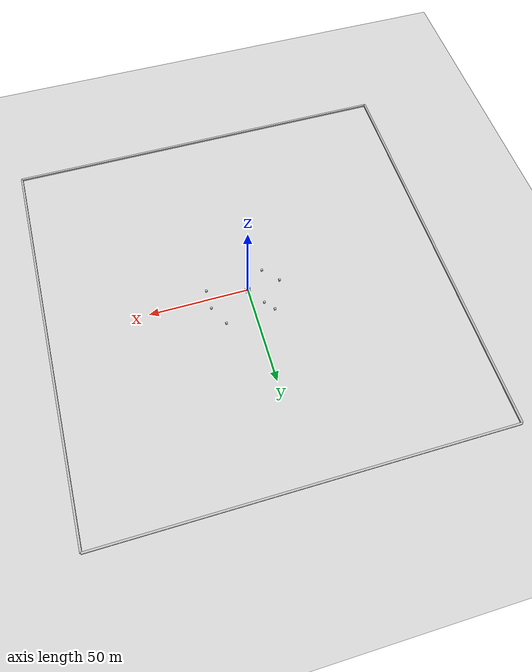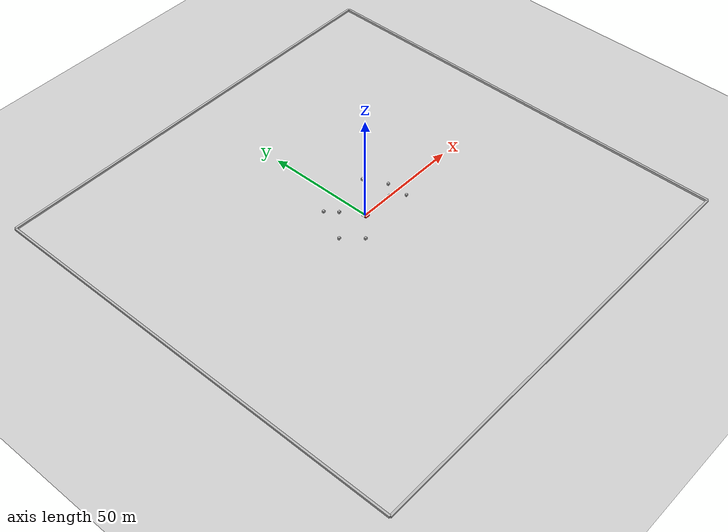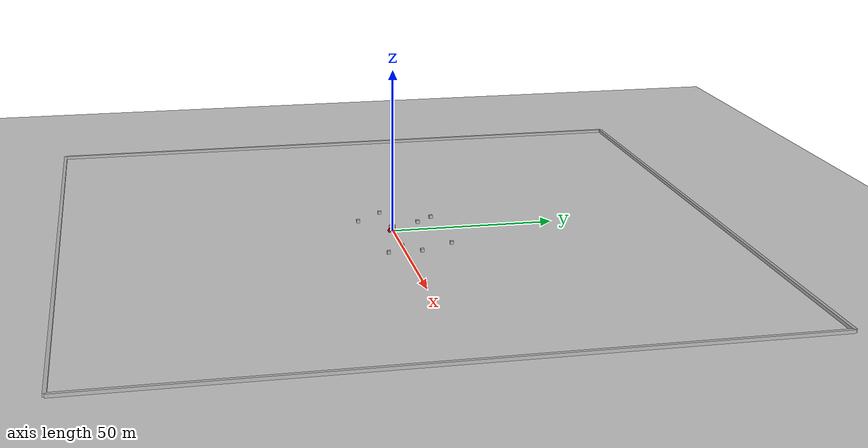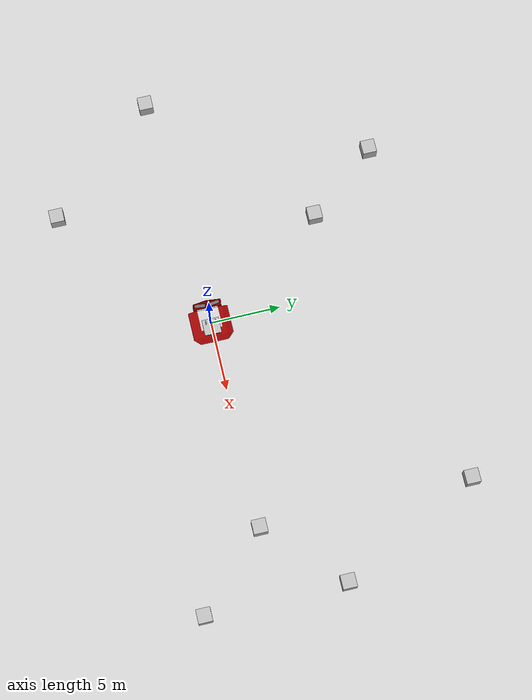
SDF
<sdf version="1.4">
    <world name="default">

      <physics type="ode">
        <real_time_update_rate>1000.0</real_time_update_rate>
        <ode>
          <solver>
            <iters>1000</iters>
          </solver>
        </ode>
      </physics>

      <include>
        <uri>model://sun</uri>
      </include>

      <include>
        <uri>model://ground_plane</uri>
      </include>

      <include>
        <uri>model://models</uri>
        <name>kratos</name>
        <pose>0 0 0.29 0 0 0</pose>
      </include>

      <model name='kratos_plataform'>
        <static>1</static>
        <pose>0 0 0 0 0 0</pose>
        <link name='link'>
          <collision name='collision'>
            <geometry>
              <mesh>
                <scale>100 100 100</scale>
                <uri>model://models/kratos_plataform4.dae</uri>
              </mesh>
            </geometry>
            <surface>
              <friction>
                <ode>
                  <mu>100000</mu>
                  <mu2>100000</mu2>
                </ode>
              </friction>
            </surface>
          </collision>
          <visual name='visual'>
            <cast_shadows>0</cast_shadows>
            <geometry>
              <mesh>
                <scale>100 100 100</scale>
                <uri>model://models/kratos_plataform4.dae</uri>
              </mesh>
            </geometry>

          </visual>
          <velocity_decay>
            <linear>0</linear>
            <angular>0</angular>
          </velocity_decay>
          <self_collide>0</self_collide>
          <kinematic>0</kinematic>
          <gravity>1</gravity>
        </link>
      </model>

      <model name='wall_west'>
        <pose>0 -100 0.5 0 0 0</pose>
        <static>1</static>
        <link name='link'>
          <collision name='collision'>
            <geometry>
              <box>
                <size>200 1 1</size>
              </box>
            </geometry>
          </collision>
          <visual name='visual'>
            <geometry>
              <box>
                <size>200 1 1</size>
              </box>
            </geometry>
          </visual>
        </link>
      </model>

      <model name='wall_east'>
        <pose>0 100 0.5 0 0 0</pose>
        <static>1</static>
        <link name='link'>
          <collision name='collision'>
            <geometry>
              <box>
                <size>200 1 1</size>
              </box>
            </geometry>
          </collision>
          <visual name='visual'>
            <geometry>
              <box>
                <size>200 1 1</size>
              </box>
            </geometry>
          </visual>
        </link>
      </model>

      <model name='wall_north'>
        <pose>100 0 0.5 0 0 0</pose>
        <static>1</static>
        <link name='link'>
          <collision name='collision'>
            <geometry>
              <box>
                <size>1 200 1</size>
              </box>
            </geometry>
          </collision>
          <visual name='visual'>
            <geometry>
              <box>
                <size>1 200 1</size>
              </box>
            </geometry>
          </visual>
        </link>
      </model>

      <model name='wall_south'>
        <pose>-100 0 0.5 0 0 0</pose>
        <static>1</static>
        <link name='link'>
          <collision name='collision'>
            <geometry>
              <box>
                <size>1 200 1</size>
              </box>
            </geometry>
          </collision>
          <visual name='visual'>
            <geometry>
              <box>
                <size>1 200 1</size>
              </box>
            </geometry>
          </visual>
        </link>
      </model>

      <model name='unit_box_1'>
        <pose>15 0 0.5 0 0 0</pose>
        <static>1</static>
        <link name='link'>
          <collision name='collision'>
            <geometry>
              <box>
                <size>1 1 1</size>
              </box>
            </geometry>
          </collision>
          <visual name='visual'>
            <geometry>
              <box>
                <size>1 1 1</size>
              </box>
            </geometry>
          </visual>
        </link>
      </model>

      <model name='unit_box_2'>
        <pose>20 5 0.5 0 0 0</pose>
        <static>1</static>
        <link name='link'>
          <collision name='collision'>
            <geometry>
              <box>
                <size>1 1 1</size>
              </box>
            </geometry>
          </collision>
          <visual name='visual'>
            <geometry>
              <box>
                <size>1 1 1</size>
              </box>
            </geometry>
          </visual>
        </link>
      </model>

      <model name='unit_box_3'>
        <pose>-6 9 0.5 0 0 0</pose>
        <static>1</static>
        <link name='link'>
          <collision name='collision'>
            <geometry>
              <box>
                <size>1 1 1</size>
              </box>
            </geometry>
          </collision>
          <visual name='visual'>
            <geometry>
              <box>
                <size>1 1 1</size>
              </box>
            </geometry>
          </visual>
        </link>
      </model>

      <model name='unit_box_4'>
        <pose>-10 -9 0.5 0 0 0</pose>
        <static>1</static>
        <link name='link'>
          <collision name='collision'>
            <geometry>
              <box>
                <size>1 1 1</size>
              </box>
            </geometry>
          </collision>
          <visual name='visual'>
            <geometry>
              <box>
                <size>1 1 1</size>
              </box>
            </geometry>
          </visual>
        </link>
      </model>

      <model name='unit_box_5'>
        <pose>-17 -1 0.5 0 0 0</pose>
        <static>1</static>
        <link name='link'>
          <collision name='collision'>
            <geometry>
              <box>
                <size>1 1 1</size>
              </box>
            </geometry>
          </collision>
          <visual name='visual'>
            <geometry>
              <box>
                <size>1 1 1</size>
              </box>
            </geometry>
          </visual>
        </link>
      </model>

      <model name='unit_box_6'>
        <pose>20 -5 0.5 0 0 0</pose>
        <static>1</static>
        <link name='link'>
          <collision name='collision'>
            <geometry>
              <box>
                <size>1 1 1</size>
              </box>
            </geometry>
          </collision>
          <visual name='visual'>
            <geometry>
              <box>
                <size>1 1 1</size>
              </box>
            </geometry>
          </visual>
        </link>
      </model>

      <model name='unit_box_7'>
        <pose>15 15 0.5 0 0 0</pose>
        <static>1</static>
        <link name='link'>
          <collision name='collision'>
            <geometry>
              <box>
                <size>1 1 1</size>
              </box>
            </geometry>
          </collision>
          <visual name='visual'>
            <geometry>
              <box>
                <size>1 1 1</size>
              </box>
            </geometry>
          </visual>
        </link>
      </model>

      <model name='unit_box_8'>
        <pose>-10 14 0.5 0 0 0</pose>
        <static>1</static>
        <link name='link'>
          <collision name='collision'>
            <geometry>
              <box>
                <size>1 1 1</size>
              </box>
            </geometry>
          </collision>
          <visual name='visual'>
            <geometry>
              <box>
                <size>1 1 1</size>
              </box>
            </geometry>
          </visual>
        </link>
      </model>

    </world>
  </sdf>

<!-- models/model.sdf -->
<sdf version='1.4'>
  <model name="Kratos">

   <static>false</static>

  <!-----------------------------------------
          BODY
  ------------------------------------------->
   <link name='chassis'>
    <pose>0.36 0 0 0 0 0</pose>

    <inertial>
      <mass>100</mass>
    </inertial>

    <collision name='collision'>
      <geometry>
         <box>
          <size>1.14 1.21 0.1</size>
        </box>
      </geometry>
    </collision>

    <visual name='visual'>
      <geometry>
         <box>
          <size>1.14 1.21 0.1</size>
        </box>
      </geometry>
    </visual>

    <collision name='caster1_collision'>
      <pose>0.51 0 -0.1 0 0 0</pose>
      <geometry>
        <sphere>
          <radius>.057</radius>
        </sphere>
      </geometry>

      <surface>
        <friction>
          <ode>
            <mu>0</mu>
            <mu2>0</mu2>
            <slip1>1.0</slip1>
            <slip2>1.0</slip2>
          </ode>
        </friction>
      </surface>
    </collision>

    <visual name='caster1_visual'>
      <pose>0.51 0 -0.1 0 0 0</pose>
      <geometry>
        <sphere>
          <radius>.057</radius>
        </sphere>
      </geometry>
    </visual>

   <visual name='depth_visual'>
      <pose>0.34 0 0.8 0 0.174532925 0</pose>
      <geometry>
        <box>
          <size>0.2 0.1 0.1</size>
        </box>
      </geometry>
    </visual>

    <sensor type="depth" name="xtion_sensor">
      <pose>0.34 0 0.8 0 0.174532925 0</pose>
      <always_on>true</always_on>
      <update_rate>1.0</update_rate>
      <topic>tteesstt</topic>
      <camera>
        <horizontal_fov>1.047</horizontal_fov>
        <image>
          <width>640</width>
          <height>480</height>
          <format>R8G8B8</format>
        </image>
        <clip>
          <near>0.05</near>
          <far>5</far>
        </clip>
      </camera>
      <visualize>true</visualize>
    </sensor>

    <sensor name="imu" type="imu">
      <imu/>
      <always_on>1</always_on>
      <update_rate>1000</update_rate>
    </sensor>

    <visual name='april_visual'>
      <pose>0.0 0.0 0.6 0 0 0</pose>
      <geometry>
        <box>
          <size>0.2 0.1 0.1</size>
        </box>
      </geometry>
    </visual>

    <sensor type="camera" name="camera1">
      <pose>0.0 0.0 0.6 0 0 0</pose>
      <always_on>true</always_on>
      <update_rate>4.0</update_rate>
      <camera name="head">
        <horizontal_fov>1.2291</horizontal_fov>
        <image>
          <width>1920</width>
          <height>1080</height>
          <format>R8G8B8</format>
        </image>
        <clip>
          <near>0.02</near>
          <far>300</far>
        </clip>
      </camera>
    </sensor>

  </link>

  <!-----------------------------------------
          WHEELS
  ------------------------------------------->

  <link name="left_wheel">
    <pose>0.0 0.345 0.0 1.57079632679 1.57079632679 0</pose>
    <inertial>
      <mass>12</mass>
    </inertial>
    <collision name="collision">
      <geometry>
        <cylinder>
          <radius>.157</radius>
          <length>.065</length>
        </cylinder>
      </geometry>

      <surface>
        <friction>
          <ode>
            <mu>100000.0</mu>
            <mu2>100000.0</mu2>
            <slip1>0.0</slip1>
              <slip2>0.0</slip2>
          </ode>
        </friction>
      </surface>

    </collision>
    <visual name="visual">
      <geometry>
        <cylinder>
          <radius>.157</radius>
          <length>.065</length>
        </cylinder>
      </geometry>
    </visual>
  </link>

  <link name="right_wheel">
    <pose>0.0 -0.345 0.0 1.57079632679 1.57079632679 0</pose>
    <inertial>
      <mass>12</mass>
    </inertial>
    <collision name="collision">
      <geometry>
        <cylinder>
          <radius>.155</radius>
          <length>.065</length>
        </cylinder>
      </geometry>

      <surface>
        <friction>
          <ode>
            <mu>100000.0</mu>
            <mu2>100000.0</mu2>
            <slip1>0.0</slip1>
              <slip2>0.0</slip2>
          </ode>
        </friction>
      </surface>

    </collision>
    <visual name="visual">
      <geometry>
        <cylinder>
          <radius>.155</radius>
          <length>.065</length>
        </cylinder>
      </geometry>
    </visual>
  </link>

  <joint type="revolute" name="left_wheel_hinge">
    <pose>0 0 0 0 0 0</pose>
    <child>left_wheel</child>
    <parent>chassis</parent>
    <axis>
      <xyz>0 1 0</xyz>
      <dynamics>
        <friction>200.0</friction>
        <damping>20.0</damping>
      </dynamics>
    </axis>
  </joint>

  <joint type="revolute" name="right_wheel_hinge">
    <pose>0 0 0 0 0 0</pose>
    <child>right_wheel</child>
    <parent>chassis</parent>
    <axis>
      <xyz>0 1 0</xyz>
      <dynamics>
        <friction>200.0</friction>
        <damping>20.0</damping>
      </dynamics>
    </axis>
  </joint>

  <plugin name="kratos" filename="robot/libkratos2.so"/>
</model>
</sdf>
